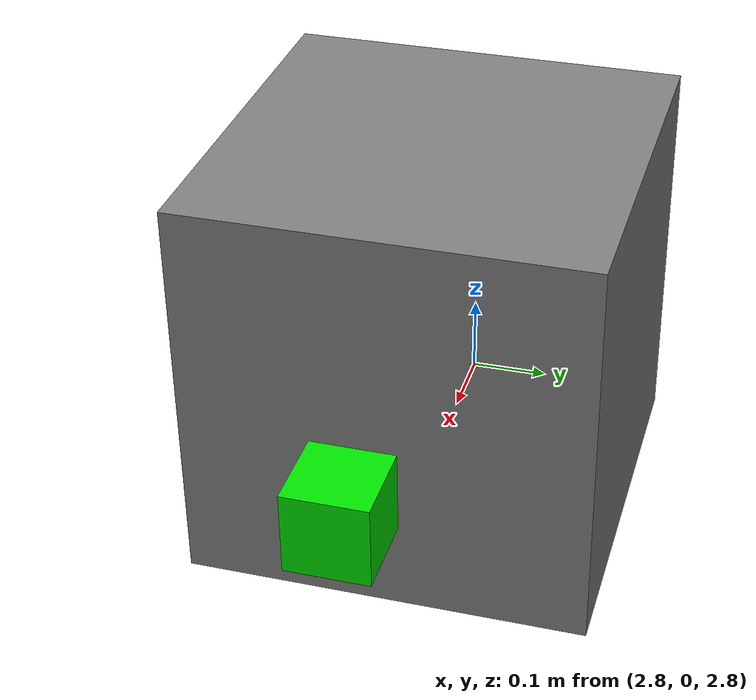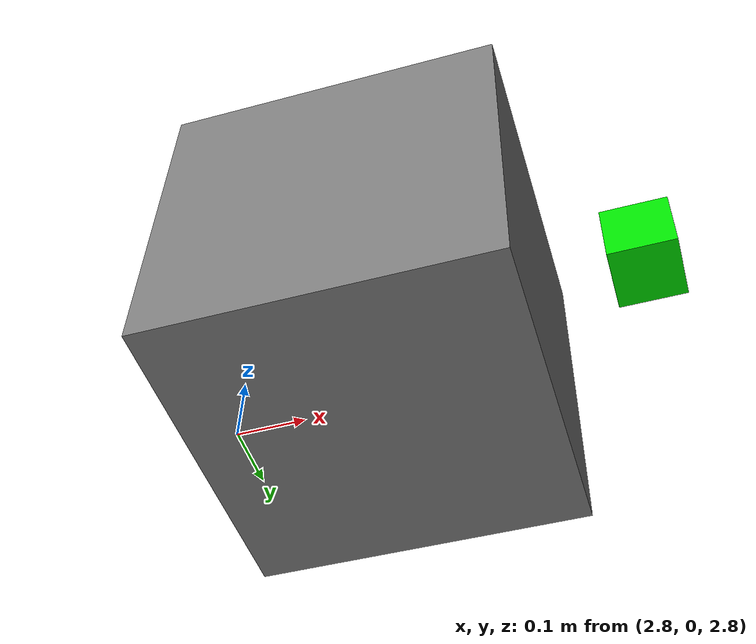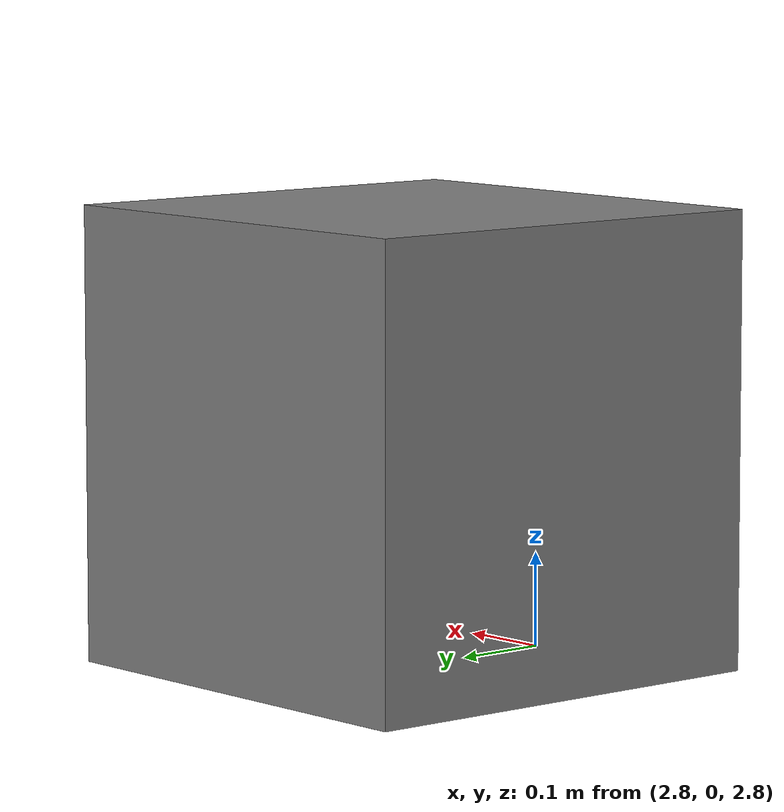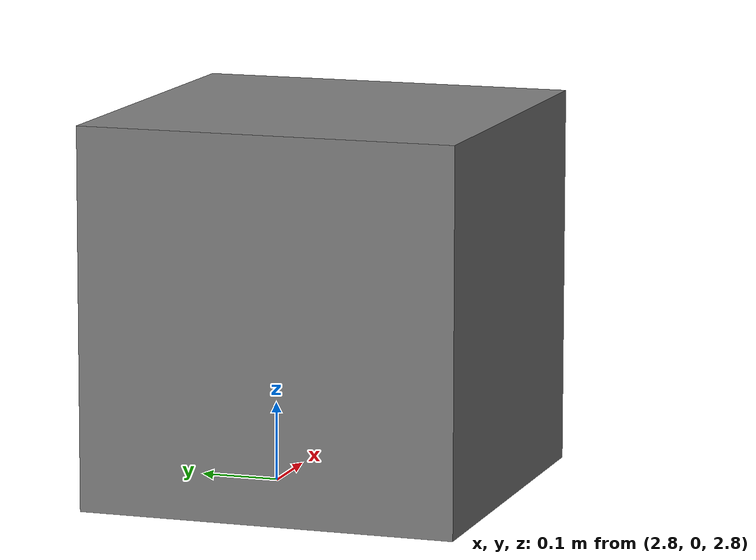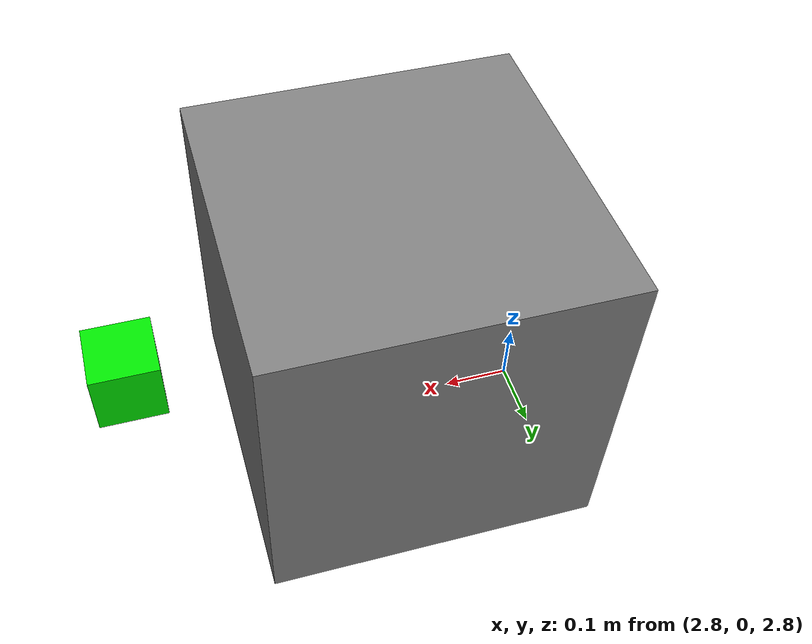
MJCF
<mujoco>
<default>
      <joint armature="1" damping="1" limited="true"/>
</default>
<worldbody>
<body name="agent1_torso" pos="3 0 3">
    <camera name="agent1_track" mode="trackcom" pos="0 -3 0.3" xyaxes="1 0 0 0 0 1"/>
    <site name="agent1_box_range" type="box" pos="0.4 0 0" size=".05 .05 .05" rgba="0 .9 0 1" euler="0 90 0"/>
    <geom name="agent1_torso_geom" pos="0 0 0" size="0.25" type="box"/>
    <joint armature="0" damping="0" limited="false" margin="0.01" name="agent1_root" pos="0 0 0" type="free"/>
</body>
</worldbody>
<actuator>
</actuator>
<sensor>
    <rangefinder name="agent1_box1" site="agent1_box_range" cutoff="20"/>
    <frameyaxis name="agent1_yAxis" objtype="site" objname="agent1_box_range"/>
</sensor>
</mujoco>
